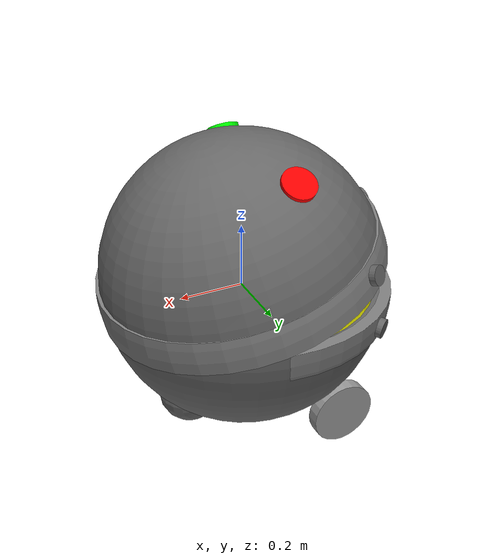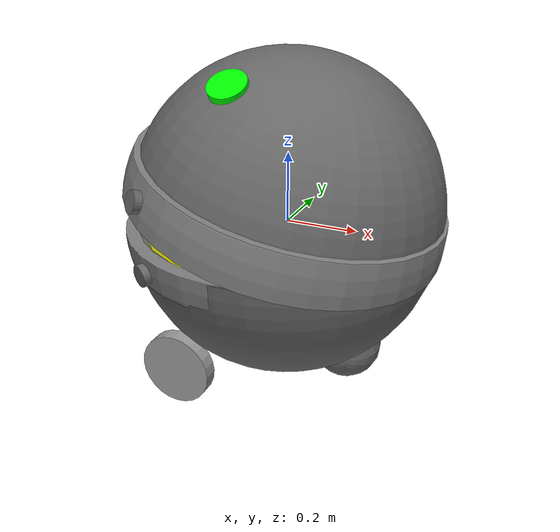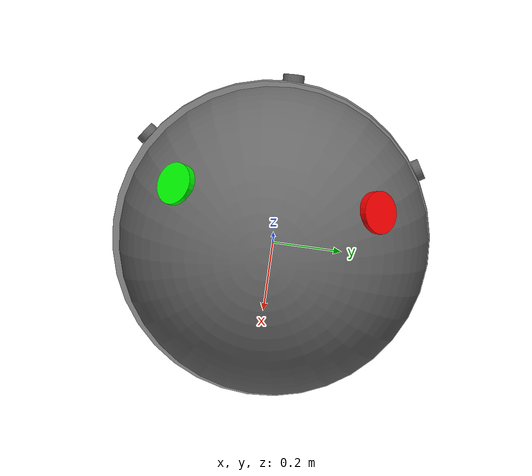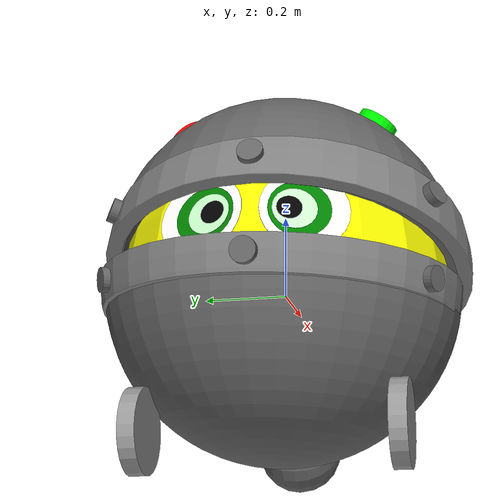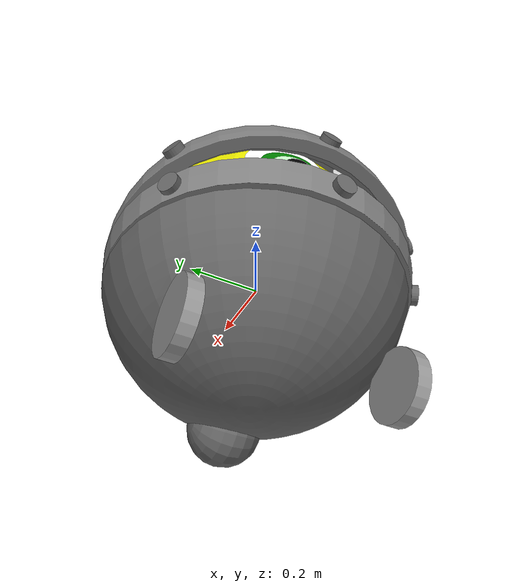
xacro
<?xml version="1.0"?>
<robot name="bibi" xmlns:xacro="http://ros.org/wiki/xacro">
  <xacro:include filename="gazebo.urdf.xacro"/>

  <!-- Define robot constants -->
  <xacro:property name="base_width" value="0.31"/>
  <xacro:property name="base_height" value="0.1"/>

  <xacro:property name="sphere_radius" value="0.4"/>
  <xacro:property name="wheel_ygap" value="0.14"/>
  <xacro:property name="wheel_radius" value="0.1"/>
  <xacro:property name="wheel_xoff" value="0.0"/>
  <xacro:property name="wheel_yoff" value="0.2"/>
  <xacro:property name="wheel_zoff" value="0.35"/>
  <xacro:property name="wheel_width" value="0.04"/>

  <xacro:property name="caster_xoff" value="0.14"/>

  <xacro:property name="Eye_ygap" value="-0.04"/>
  <xacro:property name="Eye_radius" value="0.1"/>
  <xacro:property name="Eye_xoff" value="0.37"/>
  <xacro:property name="Eye_zoff" value="-0.09"/>
  <xacro:property name="Eye_width" value="0.001"/>

  <xacro:property name="Pupil_xoff" value="0.38"/>
  <xacro:property name="Pupil_zoff" value="-0.09"/>
  <xacro:property name="Pupil_ygap" value="-0.06"/>

  <xacro:property name="Pup_xoff" value="0.39"/>
  <xacro:property name="Pup_zoff" value="-0.09"/>
  <xacro:property name="Pup_ygap" value="-0.07"/>

  <xacro:property name="Es_xoff" value="0.375"/>
  <xacro:property name="Es_zoff" value="-0.09"/>
  <xacro:property name="Es_ygap" value="-0.05"/>

  <xacro:property name="Ear_xoff" value="0.05"/>
  <xacro:property name="Ear_zoff" value="-0.41"/>
  <xacro:property name="Ear_ygap" value="0.08"/>

  <!-- Define inertia macros -->
  <xacro:macro name="sphere_inertia" params="m r">
    <inertial>
      <origin xyz="0 0 0" rpy="0 0 0"/>
      <mass value="${m}"/>
      <inertia ixx="${(2/5) * m * (r*r)}" ixy="0.0" ixz="0.0" iyy="${(2/5) * m * (r*r)}" iyz="0.0" izz="${(2/5) * m * (r*r)}"/>
    </inertial>
  </xacro:macro>

  <xacro:macro name="cylinder_inertia" params="m r h">
    <inertial>
      <origin xyz="0 0 0" rpy="${pi/2} 0 0" />
      <mass value="${m}"/>
      <inertia ixx="${(m/12) * (3*r*r + h*h)}" ixy = "0" ixz = "0" iyy="${(m/12) * (3*r*r + h*h)}" iyz = "0" izz="${(m/2) * (r*r)}"/>
    </inertial>
  </xacro:macro>

  <link name="base_link">
    <visual>
      <geometry>
        <sphere radius="${sphere_radius}"/>
      </geometry>
      <material name="Yellow">
        <color rgba="1.0 1.0 0 1.0"/>
      </material>
    </visual>

    <collision>
      <origin xyz="0 0 0.055" rpy="0 0 0"/>
      <geometry>
        <sphere radius="${sphere_radius + 0.08}"/>
      </geometry>
    </collision>

    <xacro:sphere_inertia m="20" r="${sphere_radius}"/>
  </link>

  <!-- Adding ring -->
  <link name="ring2">
    <visual>
      <geometry>
        <mesh filename="file://$(find robot_bibi)/details/Ring2.stl"/>
      </geometry>
      <origin xyz="0 0 0" rpy="0 0 0"/>
      <material name="Metallic">
        <color rgba="0.5 0.5 0.5 1.0"/>
        <specular rgba="0.5 0.5 0.5"/>
        <diffuse rgba="0.2 0.2 0.2 1.0"/>
        <shininess value="10.0"/>
      </material>
    </visual>

    <xacro:sphere_inertia m="0.001" r="${sphere_radius}"/>
  </link>

  <joint name="ring2_joint" type="fixed">
    <parent link="base_link" />
    <child link="ring2" />
    <origin xyz="0 0 ${-sphere_radius}" rpy="0 0 0" />
  </joint>

  <!-- Adding the half sphere -->
  <link name="half_sphere">
    <visual>
      <geometry>
        <mesh filename="file://$(find robot_bibi)/details/half.stl"/>
      </geometry>
      <origin xyz="0 0 0" rpy="0 0 0"/>
      <material name="Metallic1">
        <color rgba="0.4 0.4 0.4 1.0"/>
        <specular rgba="0.5 0.5 0.5"/>
        <diffuse rgba="0.1 0.1 0.1 1.0"/>
        <shininess value="10.0"/>
      </material>
    </visual>

    <xacro:sphere_inertia m="0.001" r="${sphere_radius}"/>
  </link>

  <joint name="half_sphere_joint" type="fixed">
    <parent link="base_link" />
    <child link="half_sphere" />
    <origin xyz="0 0 ${-sphere_radius}" rpy="0 0 0" />
  </joint>

  <!-- Adding ring1 -->
  <link name="ring1">
    <visual>
      <geometry>
        <mesh filename="file://$(find robot_bibi)/details/Ring1.stl"/>
      </geometry>
      <origin xyz="0 0 0" rpy="0 0 0"/>
      <material name="Metallic">
        <color rgba="0.5 0.5 0.5 1.0"/>
        <specular rgba="0.5 0.5 0.5"/>
        <diffuse rgba="0.2 0.2 0.2 1.0"/>
        <shininess value="10.0"/>
      </material>
    </visual>

    <xacro:sphere_inertia m="0.001" r="${sphere_radius}"/>
  </link>

  <joint name="ring1_joint" type="fixed">
    <parent link="base_link" />
    <child link="ring1" />
    <origin xyz="0 0 ${-sphere_radius}" rpy="0 0 0" />
  </joint>

  <!-- Adding hat -->
  <link name="hat_link">
    <visual>
      <geometry>
        <mesh filename="file://$(find robot_bibi)/details/hat.stl"/>
      </geometry>
      <origin xyz="0 0 ${sphere_radius}" rpy="0 0 0"/>
      <material name="Metallic1">
        <color rgba="0.4 0.4 0.4 1.0"/>
        <specular rgba="0.5 0.5 0.5"/>
        <diffuse rgba="0.1 0.1 0.1 1.0"/>
        <shininess value="10.0"/>
       </material>
    </visual>

    <xacro:sphere_inertia m="0.001" r="${sphere_radius}"/>
  </link>

  <joint name="hat_joint" type="fixed">
      <parent link="base_link"/>
      <child link="hat_link"/>
      <origin xyz="0 0 ${sphere_radius}" rpy="0 0 0"/>
  </joint>

  <!-- Robot Footprint -->
  <link name="base_footprint"/>

  <joint name="base_joint" type="fixed">
    <parent link="base_link"/>
    <child link="base_footprint"/>
    <origin xyz="0 0 -1" rpy="0 0 0"/>
  </joint>

  <!-- Eye1 -->
  <link name="Eye_l_link">
    <visual>
      <origin xyz="0 0 0" rpy="${pi/2} 0 0"/>
      <geometry>
        <cylinder radius="${Eye_radius}" length="${Eye_width}"/>
      </geometry>
      <material name="White">
        <color rgba="1.0 1.0 1.0 1.0"/>
      </material>
    </visual>

    <xacro:cylinder_inertia m="0.001" r="${Eye_radius}" h="${Eye_width}"/>
  </link>

  <joint name="Eye_l_joint" type="fixed">
    <parent link="base_link"/>
    <child link="Eye_l_link"/>
    <origin xyz="${-1*Eye_xoff} ${1*(base_width/2+Eye_ygap)} ${-Eye_zoff}" rpy="0.23 0 1.3"/>
    <axis xyz="0 1 0"/>
  </joint>

  <!-- Eye2 -->
  <link name="Eye_r_link">
    <visual>
      <origin xyz="0 0 0" rpy="${pi/2} 0 0"/>
      <geometry>
        <cylinder radius="${Eye_radius}" length="${Eye_width}"/>
      </geometry>
      <material name="White">
        <color rgba="1.0 1.0 1.0 1.0"/>
      </material>
    </visual>

    <xacro:cylinder_inertia m="0.001" r="${Eye_radius}" h="${Eye_width}"/>
  </link>

  <joint name="Eye_r_joint" type="fixed">
    <parent link="base_link"/>
    <child link="Eye_r_link"/>
    <origin xyz="${-1*Eye_xoff} ${-1*(base_width/2+Eye_ygap)} ${-Eye_zoff}" rpy="0.23 0 1.87"/>
    <axis xyz="0 1 0"/>
  </joint>

  <!-- Es1 -->
  <link name="Es_l_link">
    <visual>
      <origin xyz="0 0 0" rpy="${pi/2} 0 0"/>
      <geometry>
        <cylinder radius="0.07" length="0.001"/>
      </geometry>
      <material name="Grind">
        <color rgba="0.0 0.5 0.0 1.0"/>
      </material>
    </visual>

    <xacro:cylinder_inertia m="0.001" r="0.07" h="0.001"/>
  </link>

  <joint name="Es_l_joint" type="fixed">
    <parent link="base_link"/>
    <child link="Es_l_link"/>
    <origin xyz="${-1*Es_xoff} ${1*(base_width/2+Es_ygap)} ${-Es_zoff}" rpy="0.23 0 1.3"/>
    <axis xyz="0 1 0"/>
  </joint>

  <!-- Es2 -->
  <link name="Es_r_link">
    <visual>
      <origin xyz="0 0 0" rpy="${pi/2} 0 0"/>
      <geometry>
        <cylinder radius="0.07" length="0.001"/>
      </geometry>
      <material name="Grind">
        <color rgba="0.0 0.5 0.0 1.0"/>
      </material>
    </visual>

    <xacro:cylinder_inertia m="0.001" r="0.07" h="0.001"/>
  </link>

  <joint name="Es_r_joint" type="fixed">
    <parent link="base_link"/>
    <child link="Es_r_link"/>
    <origin xyz="${-1*Es_xoff} ${-1*(base_width/2+Es_ygap)} ${-Es_zoff}" rpy="0.23 0 1.87"/>
    <axis xyz="0 1 0"/>
  </joint>

  <!-- Pupils1 -->
  <link name="Pupil_l_link">
    <visual>
      <origin xyz="0 0 0" rpy="${pi/2} 0 0"/>
      <geometry>
        <cylinder radius="0.05" length="0.001"/>
      </geometry>
      <material name="Grin">
        <color rgba="0.8 1.0 0.8 1.0"/>
      </material>
    </visual>

    <xacro:cylinder_inertia m="0.001" r="0.05" h="0.001"/>
  </link>

  <joint name="Pupil_l_joint" type="fixed">
    <parent link="base_link"/>
    <child link="Pupil_l_link"/>
    <origin xyz="${-1*Pupil_xoff} ${1*(base_width/2+Pupil_ygap)} ${-Pupil_zoff}" rpy="0.23 0 1.3"/>
    <axis xyz="0 1 0"/>
  </joint>

  <!-- Pupils2 -->
  <link name="Pupil_r_link">
    <visual>
      <origin xyz="0 0 0" rpy="${pi/2} 0 0"/>
      <geometry>
        <cylinder radius="0.05" length="0.001"/>
      </geometry>
      <material name="Grin">
        <color rgba="0.8 1.0 0.8 1.0"/>
      </material>
    </visual>

    <xacro:cylinder_inertia m="0.001" r="0.05" h="0.001"/>
  </link>

  <joint name="Pupil_r_joint" type="fixed">
    <parent link="base_link"/>
    <child link="Pupil_r_link"/>
    <origin xyz="${-1*Pupil_xoff} ${-1*(base_width/2+Pupil_ygap)} ${-Pupil_zoff}" rpy="0.23 0 1.87"/>
    <axis xyz="0 1 0"/>
  </joint>

  <!-- Pup1 -->
  <link name="Pup_l_link">
    <visual>
      <origin xyz="0 0 0" rpy="${pi/2} 0 0"/>
      <geometry>
        <cylinder radius="0.028" length="0.001"/>
      </geometry>
      <material name="Black">
        <color rgba="0.0 0.0 0.0 1.0"/>
      </material>
    </visual>

    <xacro:cylinder_inertia m="0.001" r="0.028" h="0.001"/>
  </link>

  <joint name="Pup_l_joint" type="fixed">
    <parent link="base_link"/>
    <child link="Pup_l_link"/>
    <origin xyz="${-1*Pup_xoff} ${1*(base_width/2+Pup_ygap)} ${-Pup_zoff}" rpy="0.23 0 1.3"/>
    <axis xyz="0 1 0"/>
  </joint>

  <!-- Pup2 -->
  <link name="Pup_r_link">
    <visual>
      <origin xyz="0 0 0" rpy="${pi/2} 0 0"/>
      <geometry>
        <cylinder radius="0.028" length="0.001"/>
      </geometry>
      <material name="Black">
        <color rgba="0.0 0.0 0.0 1.0"/>
      </material>
    </visual>

    <xacro:cylinder_inertia m="0.001" r="0.028" h="0.001"/>
  </link>

  <joint name="Pup_r_joint" type="fixed">
    <parent link="base_link"/>
    <child link="Pup_r_link"/>
    <origin xyz="${-1*Pup_xoff} ${-1*(base_width/2+Pup_ygap)} ${-Pup_zoff}" rpy="0.23 0 1.87"/>
    <axis xyz="0 1 0"/>
  </joint>

  <!-- Ear1 -->
  <link name="Ear_r_link">
    <visual>
      <origin xyz="0 0 0" rpy="${pi/2} 0 0"/>
      <geometry>
        <cylinder radius="0.05" length="0.025"/>
      </geometry>
      <material name="Greeen">
        <color rgba="0.0 1.0 0.0 1.0"/>
      </material>
    </visual>

    <xacro:cylinder_inertia m="0.001" r="0.05" h="0.025"/>
  </link>

  <joint name="Ear_r_joint" type="fixed">
    <parent link="base_link"/>
    <child link="Ear_r_link"/>
    <origin xyz="${-1*Ear_xoff} ${-1*(base_width/2+Ear_ygap)} ${-Ear_zoff}" rpy="2.15 0.0 0.0"/>
    <axis xyz="0 1 0"/>
  </joint>

  <!-- Ear2 -->
  <link name="Ear_l_link">
    <visual>
      <origin xyz="0 0 0" rpy="${pi/2} 0 0"/>
      <geometry>
        <cylinder radius="0.05" length="0.025"/>
      </geometry>
      <material name="Red">
        <color rgba="1.0 0.0 0.0 1.0"/>
      </material>
    </visual>

    <xacro:cylinder_inertia m="0.001" r="0.05" h="0.025"/>
  </link>

  <joint name="Ear_l_joint" type="fixed">
    <parent link="base_link"/>
    <child link="Ear_l_link"/>
    <origin xyz="${-1*Ear_xoff} ${1*(base_width/2+Ear_ygap)} ${-Ear_zoff}" rpy="0.95 0 0.0"/>
    <axis xyz="0 1 0"/>
  </joint>

  <!-- Bolt1 -->
  <link name="Bolt_h_link">
    <visual>
      <origin xyz="0 0 0" rpy="${pi/2} 0 0"/>
      <geometry>
        <cylinder radius="0.029" length="0.02"/>
      </geometry>
      <material name="Metallic1">
      </material>
    </visual>

    <xacro:cylinder_inertia m="0.001" r="0.029" h="0.02"/>
  </link>

  <joint name="Bolt_h_joint" type="fixed">
    <parent link="base_link"/>
    <child link="Bolt_h_link"/>
    <origin xyz="${-1*(0.42)} ${-1*(base_width/2+(-0.15))} ${-(-0.21)}" rpy="0.3 0 1.6"/>
    <axis xyz="0 1 0"/>
  </joint>

  <!-- Bolt1.1 -->
  <link name="Bolt_hl_link">
    <visual>
      <origin xyz="0 0 0" rpy="${pi/2} 0 0"/>
      <geometry>
        <cylinder radius="0.029" length="0.02"/>
      </geometry>
      <material name="Metallic1">
      </material>
    </visual>

    <xacro:cylinder_inertia m="0.001" r="0.029" h="0.02"/>
  </link>

  <joint name="Bolt_hl_joint" type="fixed">
    <parent link="base_link"/>
    <child link="Bolt_hl_link"/>
    <origin xyz="${-1*(0.23)} ${-1*(base_width/2+(-0.518))} ${-(-0.166)}" rpy="0.3 0 0.5"/>
    <axis xyz="0 1 0"/>
  </joint>

  <!-- Bolt1.2 -->
  <link name="Bolt_hr_link">
    <visual>
      <origin xyz="0 0 0" rpy="${pi/2} 0 0"/>
      <geometry>
        <cylinder radius="0.029" length="0.02"/>
      </geometry>
      <material name="Metallic1">
      </material>
    </visual>

    <xacro:cylinder_inertia m="0.001" r="0.029" h="0.02"/>
  </link>

  <joint name="Bolt_hr_joint" type="fixed">
    <parent link="base_link"/>
    <child link="Bolt_hr_link"/>
    <origin xyz="${-1*(0.23)} ${-1*(base_width/2+(0.228))} ${-(-0.156)}" rpy="0.3 0 2.55"/>
    <axis xyz="0 1 0"/>
  </joint>

  <!-- Bolt2 -->
  <link name="Bolt_b_link">
    <visual>
      <origin xyz="0 0 0" rpy="${pi/2} 0 0"/>
      <geometry>
        <cylinder radius="0.029" length="0.02"/>
      </geometry>
      <material name="Metallic1">
      </material>
    </visual>

    <xacro:cylinder_inertia m="0.001" r="0.029" h="0.02"/>
  </link>

  <joint name="Bolt_b_joint" type="fixed">
    <parent link="base_link"/>
    <child link="Bolt_b_link"/>
    <origin xyz="${-1*(0.458)} ${-1*(base_width/2+(-0.154))} ${-(0.022)}" rpy="-0.1 0 1.57"/>
    <axis xyz="0 1 0"/>
  </joint>

  <!-- Bolt2.1 -->
  <link name="Bolt_bl_link">
    <visual>
      <origin xyz="0 0 0" rpy="${pi/2} 0 0"/>
      <geometry>
        <cylinder radius="0.029" length="0.02"/>
      </geometry>
      <material name="Metallic1">
      </material>
    </visual>

    <xacro:cylinder_inertia m="0.001" r="0.029" h="0.02"/>
  </link>

  <joint name="Bolt_bl_joint" type="fixed">
    <parent link="base_link"/>
    <child link="Bolt_bl_link"/>
    <origin xyz="${-1*(0.26)} ${-1*(base_width/2+(-0.525))} ${-(0.01)}" rpy="-0.1 0 0.6"/>
    <axis xyz="0 1 0"/>
  </joint>

  <!-- Bolt2.2 -->
  <link name="Bolt_br_link">
    <visual>
      <origin xyz="0 0 0" rpy="${pi/2} 0 0"/>
      <geometry>
        <cylinder radius="0.029" length="0.02"/>
      </geometry>
      <material name="Metallic1">
      </material>
    </visual>

    <xacro:cylinder_inertia m="0.001" r="0.029" h="0.02"/>
  </link>

  <joint name="Bolt_br_joint" type="fixed">
    <parent link="base_link"/>
    <child link="Bolt_br_link"/>
    <origin xyz="${-1*(0.23)} ${-1*(base_width/2+(0.22))} ${-(0.04)}" rpy="-0.1 0 2.66"/>
    <axis xyz="0 1 0"/>
  </joint>

  <!-- Wheels -->
  <xacro:macro name="wheel" params="prefix x_reflect y_reflect">
    <link name="${prefix}_link">
      <visual>
        <origin xyz="0 0 0" rpy="${pi/2} 0 0"/>
        <geometry>
          <cylinder radius="${wheel_radius}" length="${wheel_width}"/>
        </geometry>
        <material name="Metallic">
          <color rgba="0.6 0.6 0.6 1.0"/>
          <specular rgba="0.5 0.5 0.5"/>
          <diffuse rgba="0.5 0.5 0.5 1.0"/>
          <shininess value="10.0"/>
        </material>
      </visual>

      <collision>
        <origin xyz="0 0 0" rpy="${pi/2} 0 0"/>
        <geometry>
          <cylinder radius="${wheel_radius}" length="${wheel_width}"/>
        </geometry>
      </collision>

      <xacro:cylinder_inertia m="0.5" r="${wheel_radius}" h="${wheel_width}"/>
    </link>

    <joint name="${prefix}_joint" type="continuous">
      <parent link="base_link"/>
      <child link="${prefix}_link"/>
      <origin xyz="${x_reflect*wheel_xoff-0.2} ${y_reflect*(base_width/2+wheel_ygap)} ${-wheel_zoff}" rpy="0 0 0"/>
      <axis xyz="0 1 0"/>
    </joint>
  </xacro:macro>

  <xacro:wheel prefix="drivewhl_l" x_reflect="-1" y_reflect="1" />
  <xacro:wheel prefix="drivewhl_r" x_reflect="-1" y_reflect="-1" />

  <!-- Caster Wheel -->
  <link name="front_caster">
    <visual>
      <origin xyz="0.045 0 -0.3" rpy="${pi/2} 0 0"/>
      <geometry>
        <sphere radius="${(wheel_radius)}"/>
      </geometry>
      <material name="Metallic1">
      </material>
    </visual>

    <collision>
      <origin xyz="0.045 0 -0.3" rpy="${pi/2} 0 0"/>
      <geometry>
        <sphere radius="${(wheel_radius)}"/>
      </geometry>
    </collision>

    <xacro:sphere_inertia m="0.01" r="${(wheel_radius)}"/>

  </link>

  <joint name="caster_joint" type="fixed">
    <parent link="base_link"/>
    <child link="front_caster"/>
    <origin xyz="${caster_xoff} 0.0 ${-(base_height/2)}" rpy="0 0 0"/>
  </joint>

  <gazebo reference="front_caster">
      <material>Gazebo/White</material>
      <mu1 value="0.001"/>
      <mu2 value="0.001"/>
  </gazebo>

</robot>
